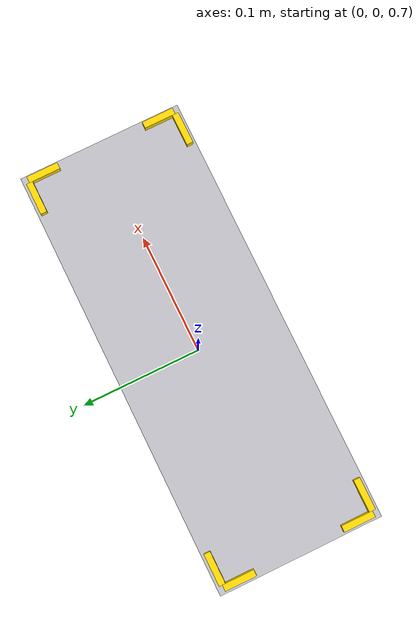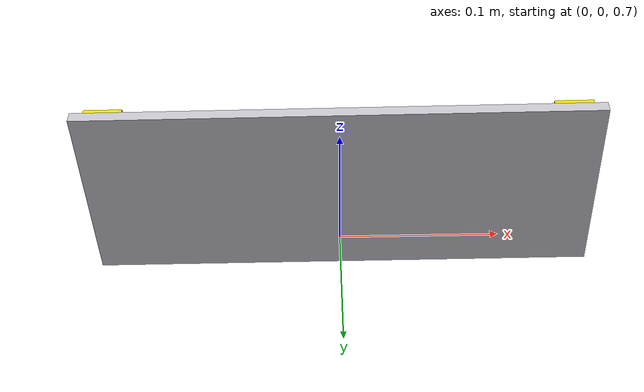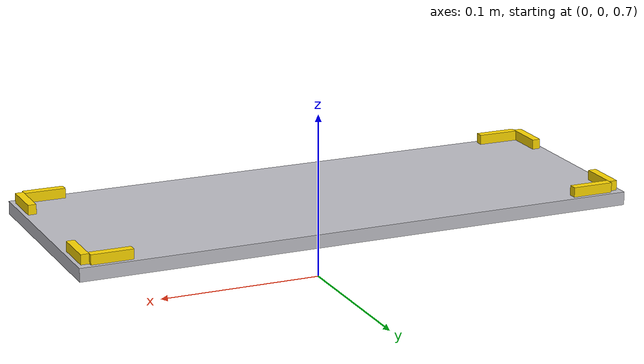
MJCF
<mujoco model="assembly_pallet">

  <visual>
    <headlight diffuse="0.6 0.6 0.6" ambient="0.3 0.3 0.3"/>
  </visual>

  <asset>
    <material name="aluminum_plate" rgba="0.75 0.75 0.78 1"/>
    <material name="fixture_stop"   rgba="1.0 0.85 0.0 1"/>
    <texture name="grid" type="2d" builtin="checker" rgb1="0.3 0.3 0.3" rgb2="0.4 0.4 0.4" width="512" height="512"/>
    <material name="floor_mat" texture="grid" texrepeat="5 5" reflectance="0.2"/>
  </asset>

  <worldbody>
    <!-- Ground plane -->
    <geom name="floor" type="plane" size="1 1 0.01" material="floor_mat"/>

    <!-- Camera aimed at pallet -->
    <camera name="pallet_view" pos="0.4 -0.4 1.1" xyaxes="0.707 0.707 0 -0.35 0.35 0.87"/>

    <!-- Pallet body — origin at top surface center -->
    <body name="pallet_base" pos="0 0 0.750">

      <!-- Base plate: 340x130x8mm, origin at top surface so plate extends downward -->
      <geom name="base_plate"
            type="box"
            size="0.170 0.065 0.004"
            pos="0 0 -0.004"
            material="aluminum_plate"
            mass="1.5"/>

      <!-- === FL corner (-X, -Y) === -->
      <!-- X-arm: along X at -Y wall, from Y-arm inner face inward -->
      <geom name="stop_FL_x"
            type="box"
            size="0.0125 0.0025 0.003"
            pos="-0.1500 -0.0600 0.003"
            material="fixture_stop"
            mass="0.02"/>
      <!-- Y-arm: along Y at -X wall, from corner tip inward only -->
      <geom name="stop_FL_y"
            type="box"
            size="0.0025 0.0125 0.003"
            pos="-0.1650 -0.0475 0.003"
            material="fixture_stop"
            mass="0.02"/>

      <!-- === FR corner (+X, -Y) === -->
      <!-- X-arm: along X at -Y wall, from Y-arm inner face inward -->
      <geom name="stop_FR_x"
            type="box"
            size="0.0125 0.0025 0.003"
            pos="0.1500 -0.0600 0.003"
            material="fixture_stop"
            mass="0.02"/>
      <!-- Y-arm: along Y at +X wall, from corner tip inward only -->
      <geom name="stop_FR_y"
            type="box"
            size="0.0025 0.0125 0.003"
            pos="0.1650 -0.0475 0.003"
            material="fixture_stop"
            mass="0.02"/>

      <!-- === RL corner (-X, +Y) === -->
      <!-- X-arm: along X at +Y wall, from Y-arm inner face inward -->
      <geom name="stop_RL_x"
            type="box"
            size="0.0125 0.0025 0.003"
            pos="-0.1500 0.0600 0.003"
            material="fixture_stop"
            mass="0.02"/>
      <!-- Y-arm: along Y at -X wall, from corner tip inward only -->
      <geom name="stop_RL_y"
            type="box"
            size="0.0025 0.0125 0.003"
            pos="-0.1650 0.0475 0.003"
            material="fixture_stop"
            mass="0.02"/>

      <!-- === RR corner (+X, +Y) === -->
      <!-- X-arm: along X at +Y wall, from Y-arm inner face inward -->
      <geom name="stop_RR_x"
            type="box"
            size="0.0125 0.0025 0.003"
            pos="0.1500 0.0600 0.003"
            material="fixture_stop"
            mass="0.02"/>
      <!-- Y-arm: along Y at +X wall, from corner tip inward only -->
      <geom name="stop_RR_y"
            type="box"
            size="0.0025 0.0125 0.003"
            pos="0.1650 0.0475 0.003"
            material="fixture_stop"
            mass="0.02"/>

    </body>
  </worldbody>
</mujoco>
